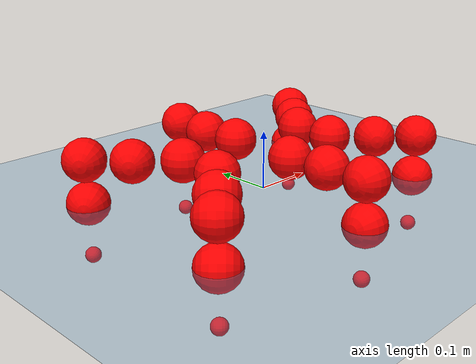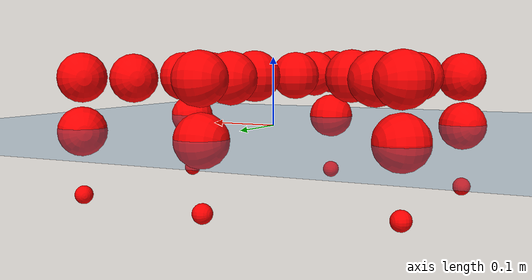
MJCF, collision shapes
<mujoco model="Golem">
  <compiler angle="radian" assetdir="assets" balanceinertia="true" inertiafromgeom="false"/>

  <option timestep="0.005" density="1.2" viscosity="2e-05"/>

  <size nkey="1"/>

  <visual>
    <quality shadowsize="8192"/>
    <map shadowclip="0.5"/>
  </visual>

  <default>
    <default class="/">
      <joint armature="0.01" damping="0.01" frictionloss="0.01"/>
      <geom contype="0" conaffinity="0" group="1" solref="-1000 -80"/>
      <site size="0.01 0.005 0.005" group="5"/>
      <general forcelimited="true" biastype="affine" gainprm="25" biasprm="0 -25 -0.5"/>
      <default class="visual">
        <geom type="mesh" group="2"/>
      </default>
      <default class="collision">
        <geom group="3"/>
      </default>
      <default class="foot">
        <geom size="0.01 0 0" condim="6" group="4" priority="1" solimp="0.015 1 0.01"/>
      </default>
      <default class="reward_collision_sphere">
        <geom group="5" rgba="1 0 0 1"/>
      </default>
    </default>
  </default>

  <asset>
    <texture type="skybox" colorspace="auto" name="//unnamed_texture_0" builtin="gradient" rgb1="0.95 0.95 0.95" rgb2="0.95 0.95 0.95" width="100" height="600"/>
    <texture type="2d" colorspace="auto" name="texplane" builtin="checker" rgb1="0.345 0.575 0.748" rgb2="0.345 0.575 0.748" markrgb="1 1 1" width="512" height="512"/>
    <material name="MatPlane" class="/" texture="texplane" texuniform="true" texrepeat="2 2" specular="0.9"/>
    <mesh name="body" class="/" file="body.stl" scale="0.001 0.001 0.001"/>
    <mesh name="coxa" class="/" file="coxa.stl" scale="0.001 0.001 0.001"/>
    <mesh name="femur" class="/" file="femur.stl" scale="0.001 0.001 0.001"/>
    <mesh name="tibia" class="/" file="tibia.stl" scale="0.001 0.001 0.001"/>
    <mesh name="tarsus" class="/" file="tarsus.stl" scale="0.001 0.001 0.001"/>
  </asset>

  <worldbody>
    <geom name="floor" class="/" size="100 100 0.125" type="plane" group="0" material="MatPlane"/>
    <light name="toplight_shadow" class="/" pos="0 0 5" dir="0.0990148 0.0990148 -0.990148" type="directional" ambient="0.04 0.04 0.04" diffuse="0.55 0.55 0.55" specular="0.12 0.12 0.12"/>
    <light name="toplight_fill" class="/" pos="0 0 5" dir="0.0990148 0.0990148 -0.990148" type="directional" castshadow="false" ambient="0.04 0.04 0.04" diffuse="0.3 0.3 0.3" specular="0.08 0.08 0.08"/>
    <body name="trunk" pos="-0.00278353 0.000515088 -0.000454378" quat="0.999999 -0.000732337 0.000774512 -0.000480959">
      <inertial pos="0.00137509 0.001691 4.70614e-05" quat="0.999935 0.00113451 0.0113535 -0.000466702" mass="2.55095" diaginertia="0.0044673 0.0016364 0.0179051"/>
      <joint name="//unnamed_joint_0" type="free"/>
      <geom name="//unnamed_geom_1" class="/" pos="0 0 0.0724695" quat="1 0 0 0" type="mesh" rgba="0.9 0.9 0.9 1" mesh="body"/>
      <site name="imu" class="/" pos="0.109138 0.0137685 0.10317" size="0.00895409"/>
      <camera name="track" class="/" pos="0 -1.39277 0" quat="0.707107 0.707107 0 0" mode="trackcom"/>
      <camera name="ego_camera" class="/" pos="0.111476 0 0.113234" quat="-0.5 -0.5 0.5 0.5"/>
      <body name="coxa_RR" pos="-0.153692 -0.0551363 0.074024" quat="0.381497 -0.000375565 -0.000183338 -0.92437">
        <inertial pos="0.00256551 0.00163047 0.00199465" quat="0.999958 -0.00660249 -0.00593677 0.00209446" mass="0.15207" diaginertia="0.00480085 0.0017088 0.0191143"/>
        <joint name="coxa_joint_RR" class="/" pos="0 0 0" axis="-0.000858245 0.000697325 -0.999999" range="-3.1454 3.10148" armature="0.00985369" damping="0.0192158" frictionloss="0.00892208"/>
        <geom name="//unnamed_geom_2" class="/" type="mesh" rgba="0.2 0.2 0.2 1" mesh="coxa"/>
        <geom name="//unnamed_geom_3" class="reward_collision_sphere" size="0.0358164" pos="-0.0257252 0 0"/>
        <body name="femur_RR" pos="0.0528404 0.00290133 -0.00203153" quat="0.499153 -0.499401 0.500591 0.500852">
          <inertial pos="0.00259829 0.00136097 -0.000674422" quat="0.999915 -0.00711113 0.010529 -0.00283536" mass="0.144238" diaginertia="0.00468893 0.00165421 0.0186243"/>
          <joint name="femur_joint_RR" class="/" pos="0 0 0" axis="0.00409957 0.00143711 -0.999991" stiffness="0.0112433" range="-3.09199 3.08779" armature="0.00911228" damping="0.0160737" frictionloss="0.0096017"/>
          <geom name="//unnamed_geom_4" class="/" type="mesh" rgba="0.9 0.9 0.9 1" mesh="femur"/>
          <geom name="//unnamed_geom_5" class="reward_collision_sphere" size="0.0358164"/>
          <body name="tibia_RR" pos="0.00153739 -0.0730631 0.00308894" quat="0.000343106 0.999999 0.000503429 -0.00103403">
            <inertial pos="-0.00283323 -0.00124404 -0.000453167" quat="0.99997 -0.0001411 -0.00759736 -0.00112755" mass="0.147858" diaginertia="0.00474657 0.00166558 0.0193947"/>
            <joint name="tibia_joint_RR" class="/" pos="0 0 0" axis="-0.0100506 0.010628 0.999893" stiffness="0.011007" range="-3.16516 3.13268" armature="0.0088311" damping="0" frictionloss="0.00911337"/>
            <geom name="//unnamed_geom_6" class="/" type="mesh" rgba="0.2 0.2 0.2 1" mesh="tibia"/>
            <geom name="//unnamed_geom_7" class="reward_collision_sphere" size="0.0358164"/>
            <body name="tarsus_RR" pos="0.0734838 0.00281243 -0.000276039" quat="0.999999 -0.000401516 -0.000996859 0.000444155">
              <inertial pos="0.0506225 0.00115202 -0.00118728" quat="0.499569 0.498228 0.500322 0.501875" mass="0.147801" diaginertia="0.00482767 0.00170286 0.019101"/>
              <joint name="tarsus_joint_RR" class="/" pos="0 0 0" axis="-0.00236021 0.00346485 0.999991" range="-3.13404 3.14321" armature="0.0085128" damping="0.0358327" frictionloss="0.00770122"/>
              <geom name="//unnamed_geom_8" class="/" type="mesh" rgba="0.9 0.9 0.9 1" mesh="tarsus"/>
              <geom name="foot_1" class="foot" size="0.00923333" pos="0.0960408 0 0" quat="0 -0.707107 0 0.707107"/>
              <geom name="//unnamed_geom_10" class="reward_collision_sphere" size="0.0358164"/>
              <geom name="//unnamed_geom_11" class="reward_collision_sphere" size="0.0134311" pos="0.0921821 0 0"/>
              <site name="foot_1" class="foot" pos="0.0960408 0 0" quat="0 -0.707107 0 0.707107" size="0.00895409"/>
            </body>
          </body>
        </body>
      </body>
      <body name="coxa_RM" pos="-0.0026863 -0.0905796 0.0722961" quat="0.707171 -0.000162478 0.000376809 -0.707042">
        <inertial pos="-0.00255341 -0.000384877 0.000744171" quat="0.999999 -0.000195993 0.00055868 0.00157308" mass="0.147961" diaginertia="0.00467201 0.00173047 0.0192201"/>
        <joint name="coxa_joint_RM" class="/" pos="0 0 0" axis="0.000309247 5.88363e-06 -1" range="-3.08336 3.13412" armature="0.0102579" damping="0.0111882" frictionloss="0.00876016"/>
        <geom name="//unnamed_geom_12" class="/" type="mesh" rgba="0.2 0.2 0.2 1" mesh="coxa"/>
        <geom name="//unnamed_geom_13" class="reward_collision_sphere" size="0.0358164" pos="-0.0257252 0 0"/>
        <body name="femur_RM" pos="0.0483613 0.00181132 0.00141574" quat="0.499202 -0.500185 0.500889 0.499722">
          <inertial pos="-0.000873639 -0.00247782 0.00112208" quat="0.999944 0.00334333 -0.00785221 0.00632112" mass="0.143415" diaginertia="0.00442729 0.0015955 0.0182705"/>
          <joint name="femur_joint_RM" class="/" pos="0 0 0" axis="5.985e-05 0.000247616 -1" range="-3.18003 3.13806" armature="0.00851803" damping="0.0126742" frictionloss="0.00899009"/>
          <geom name="//unnamed_geom_14" class="/" type="mesh" rgba="0.9 0.9 0.9 1" mesh="femur"/>
          <geom name="//unnamed_geom_15" class="reward_collision_sphere" size="0.0358164"/>
          <body name="tibia_RM" pos="-0.00138532 -0.0752193 -0.000199261" quat="-0.000493643 1 0.000760106 -0.00020757">
            <inertial pos="-0.00278225 -0.000475407 9.56429e-05" quat="0.999902 -0.0112936 0.00790642 -0.00250684" mass="0.143504" diaginertia="0.0046945 0.00160462 0.0183877"/>
            <joint name="tibia_joint_RM" class="/" pos="0 0 0" axis="0.00131205 -0.00112554 0.999999" range="-3.13813 3.13176" armature="0.00943814" damping="0" frictionloss="0.00897001"/>
            <geom name="//unnamed_geom_16" class="/" type="mesh" rgba="0.2 0.2 0.2 1" mesh="tibia"/>
            <geom name="//unnamed_geom_17" class="reward_collision_sphere" size="0.0358164"/>
            <body name="tarsus_RM" pos="0.0747615 9.91068e-05 -0.00240069" quat="0.999999 0.00117215 0.000190292 0.000381085">
              <inertial pos="0.0509391 -0.000831212 0.000148396" quat="0.497978 0.503502 0.499445 0.499057" mass="0.141855" diaginertia="0.00470241 0.00161703 0.0194653"/>
              <joint name="tarsus_joint_RM" class="/" pos="0 0 0" axis="0.0141332 -0.000667621 0.9999" range="-3.1946 3.17792" armature="0.00783091" damping="0.00752629" frictionloss="0.00808299"/>
              <geom name="//unnamed_geom_18" class="/" type="mesh" rgba="0.9 0.9 0.9 1" mesh="tarsus"/>
              <geom name="foot_2" class="foot" size="0.00904563" pos="0.0960408 0 0" quat="0 -0.707107 0 0.707107"/>
              <geom name="//unnamed_geom_20" class="reward_collision_sphere" size="0.0358164"/>
              <geom name="//unnamed_geom_21" class="reward_collision_sphere" size="0.0134311" pos="0.0921821 0 0"/>
              <site name="foot_2" class="foot" pos="0.0960408 0 0" quat="0 -0.707107 0 0.707107" size="0.00895409"/>
            </body>
          </body>
        </body>
      </body>
      <body name="coxa_RF" pos="0.150226 -0.0549317 0.072582" quat="0.923872 0.00120507 0.000402518 -0.382699">
        <inertial pos="0.00256501 0.00244312 5.50032e-05" quat="1 5.26817e-05 -1.10517e-05 0.000162122" mass="0.141885" diaginertia="0.00465832 0.00158503 0.0187111"/>
        <joint name="coxa_joint_RF" class="/" pos="0 0 0" axis="0.00865751 -0.00951354 -0.999917" stiffness="0.00101841" range="-3.1008 3.0908" armature="0.00838605" damping="0.0319363" frictionloss="0.00847424"/>
        <geom name="//unnamed_geom_22" class="/" type="mesh" rgba="0.2 0.2 0.2 1" mesh="coxa"/>
        <geom name="//unnamed_geom_23" class="reward_collision_sphere" size="0.0358164" pos="-0.0257252 0 0"/>
        <body name="femur_RF" pos="0.0529366 0.000257404 -0.00183153" quat="0.500688 -0.499613 0.500513 0.499184">
          <inertial pos="0.0006727 -0.00259588 0.00223813" quat="0.999907 -0.00608653 0.00177147 -0.0120767" mass="0.144153" diaginertia="0.00452615 0.00158953 0.0175526"/>
          <joint name="femur_joint_RF" class="/" pos="0 0 0" axis="0.00830872 -0.00541263 -0.999951" range="-3.12108 3.09082" armature="0.00992617" damping="0.00440305" frictionloss="0.0102102"/>
          <geom name="//unnamed_geom_24" class="/" type="mesh" rgba="0.9 0.9 0.9 1" mesh="femur"/>
          <geom name="//unnamed_geom_25" class="reward_collision_sphere" size="0.0358164"/>
          <body name="tibia_RF" pos="-0.00126016 -0.0728705 -0.000743489" quat="0.000692072 1 0.000698281 4.76425e-05">
            <inertial pos="-0.000245113 0.000221553 -0.000612971" quat="0.999902 0.0126754 -0.000956904 -0.00588326" mass="0.139758" diaginertia="0.0044204 0.00158873 0.0183766"/>
            <joint name="tibia_joint_RF" class="/" pos="0 0 0" axis="0.00297234 -0.00158981 0.999994" range="-3.14478 3.1875" armature="0.00851865" damping="0" frictionloss="0.00934462"/>
            <geom name="//unnamed_geom_26" class="/" type="mesh" rgba="0.2 0.2 0.2 1" mesh="tibia"/>
            <geom name="//unnamed_geom_27" class="reward_collision_sphere" size="0.0358164"/>
            <body name="tarsus_RF" pos="0.0743793 -0.000993897 0.000870545" quat="0.999999 0.000849091 0.000525575 6.358e-05">
              <inertial pos="0.0517706 6.05603e-05 -0.000515813" quat="0.496838 0.491303 0.502658 0.509027" mass="0.138431" diaginertia="0.00451612 0.00159758 0.0174278"/>
              <joint name="tarsus_joint_RF" class="/" pos="0 0 0" axis="-0.0030989 -4.65944e-05 0.999995" range="-3.14664 3.15246" armature="0.00884232" damping="0.00729812" frictionloss="0.0100899"/>
              <geom name="//unnamed_geom_28" class="/" type="mesh" rgba="0.9 0.9 0.9 1" mesh="tarsus"/>
              <geom name="foot_3" class="foot" size="0.0097691" pos="0.0960408 0 0" quat="0 -0.707107 0 0.707107"/>
              <geom name="//unnamed_geom_30" class="reward_collision_sphere" size="0.0358164"/>
              <geom name="//unnamed_geom_31" class="reward_collision_sphere" size="0.0134311" pos="0.0921821 0 0"/>
              <site name="foot_3" class="foot" pos="0.0960408 0 0" quat="0 -0.707107 0 0.707107" size="0.00895409"/>
            </body>
          </body>
        </body>
      </body>
      <body name="coxa_LR" pos="-0.154686 0.0592758 0.0755054" quat="0.383489 0.000336224 0.000763119 0.923545">
        <inertial pos="0.000359976 -0.00024461 0.00105125" quat="0.999999 0.000305259 0.000812557 0.00104674" mass="0.140574" diaginertia="0.00448816 0.00161949 0.018186"/>
        <joint name="coxa_joint_LR" class="/" pos="0 0 0" axis="0.00333728 -0.0148351 -0.999884" range="-3.08398 3.14134" armature="0.00811788" damping="0.0179423" frictionloss="0.00917061"/>
        <geom name="//unnamed_geom_32" class="/" type="mesh" rgba="0.2 0.2 0.2 1" mesh="coxa"/>
        <geom name="//unnamed_geom_33" class="reward_collision_sphere" size="0.0358164" pos="-0.0257252 0 0"/>
        <body name="femur_LR" pos="0.0542696 -0.00190691 -0.00169356" quat="0.500411 -0.499687 0.499551 0.500351">
          <inertial pos="6.55159e-05 0.000963033 0.00178502" quat="0.999974 0.00699677 -0.00182931 -0.000496963" mass="0.145584" diaginertia="0.00476347 0.00159319 0.0192276"/>
          <joint name="femur_joint_LR" class="/" pos="0 0 0" axis="0.0025627 0.0037124 0.99999" range="-3.19175 3.19125" armature="0.00908038" damping="0" frictionloss="0.00876936"/>
          <geom name="//unnamed_geom_34" class="/" type="mesh" rgba="0.9 0.9 0.9 1" mesh="femur"/>
          <geom name="//unnamed_geom_35" class="reward_collision_sphere" size="0.0358164"/>
          <body name="tibia_LR" pos="-0.00164729 -0.0757758 -0.00167375" quat="-4.3942e-05 1 -4.27943e-05 1.07697e-05">
            <inertial pos="-0.00200672 -0.000444249 -0.00232712" quat="0.999987 -0.000334604 0.00325994 0.00388426" mass="0.143619" diaginertia="0.00472399 0.00171465 0.0182243"/>
            <joint name="tibia_joint_LR" class="/" pos="0 0 0" axis="0.00103582 -0.00296182 -0.999995" range="-3.09109 3.19483" armature="0.00797056" damping="0.00541109" frictionloss="0.00847833"/>
            <geom name="//unnamed_geom_36" class="/" type="mesh" rgba="0.2 0.2 0.2 1" mesh="tibia"/>
            <geom name="//unnamed_geom_37" class="reward_collision_sphere" size="0.0358164"/>
            <body name="tarsus_LR" pos="0.0738936 -0.000392959 0.000595926" quat="1 -0.000232632 -2.09976e-05 -0.000187541">
              <inertial pos="0.0513662 0.00102877 0.000400065" quat="0.501468 0.499975 0.498418 0.500134" mass="0.144823" diaginertia="0.00464666 0.00174789 0.0192141"/>
              <joint name="tarsus_joint_LR" class="/" pos="0 0 0" axis="-0.0110547 -0.00532949 -0.999925" stiffness="0.00762597" range="-3.12176 3.08489" armature="0.00923936" damping="0.0274947" frictionloss="0.0102088"/>
              <geom name="//unnamed_geom_38" class="/" type="mesh" rgba="0.9 0.9 0.9 1" mesh="tarsus"/>
              <geom name="foot_4" class="foot" size="0.00919511" pos="0.0960408 0 0" quat="0.707107 0 -0.707107 0"/>
              <geom name="//unnamed_geom_40" class="reward_collision_sphere" size="0.0358164"/>
              <geom name="//unnamed_geom_41" class="reward_collision_sphere" size="0.0134311" pos="0.0921821 0 0"/>
              <site name="foot_4" class="foot" pos="0.0960408 0 0" quat="0.707107 0 -0.707107 0" size="0.00895409"/>
            </body>
          </body>
        </body>
      </body>
      <body name="coxa_LM" pos="-0.000444991 0.0885627 0.0744987" quat="0.706964 0.000849385 0.000343802 0.707249">
        <inertial pos="0.0027312 0.00207302 0.00103914" quat="1 -5.52852e-06 0.000435833 -0.000308309" mass="0.143924" diaginertia="0.00467694 0.00164487 0.0187602"/>
        <joint name="coxa_joint_LM" class="/" pos="0 0 0" axis="0.00183584 -0.000577079 -0.999998" range="-3.08844 3.08641" armature="0.0101875" damping="0.00618458" frictionloss="0.0100612"/>
        <geom name="//unnamed_geom_42" class="/" type="mesh" rgba="0.2 0.2 0.2 1" mesh="coxa"/>
        <geom name="//unnamed_geom_43" class="reward_collision_sphere" size="0.0358164" pos="-0.0257252 0 0"/>
        <body name="femur_LM" pos="0.0468916 0.00278532 -0.000900872" quat="0.500201 -0.499313 0.499619 0.500865">
          <inertial pos="-0.00265513 0.00223817 0.000745214" quat="0.999902 0.00852481 0.00725818 -0.00842774" mass="0.14342" diaginertia="0.00480105 0.00158286 0.0185869"/>
          <joint name="femur_joint_LM" class="/" pos="0 0 0" axis="-0.00235146 -0.00291051 0.999993" stiffness="0.01054" range="-3.11203 3.13572" armature="0.0079528" damping="0" frictionloss="0.00859115"/>
          <geom name="//unnamed_geom_44" class="/" type="mesh" rgba="0.9 0.9 0.9 1" mesh="femur"/>
          <geom name="//unnamed_geom_45" class="reward_collision_sphere" size="0.0358164"/>
          <body name="tibia_LM" pos="-0.00152819 -0.0708981 -0.00252345" quat="0.000185993 1 6.12531e-05 -0.000190699">
            <inertial pos="0.000671627 0.00139687 0.00218005" quat="0.99999 0.00151117 -0.000970309 0.00409492" mass="0.140316" diaginertia="0.00445672 0.00163165 0.0183881"/>
            <joint name="tibia_joint_LM" class="/" pos="0 0 0" axis="0.000943461 0.0138043 -0.999904" range="-3.15935 3.19445" armature="0.00917876" damping="0" frictionloss="0.00781448"/>
            <geom name="//unnamed_geom_46" class="/" type="mesh" rgba="0.2 0.2 0.2 1" mesh="tibia"/>
            <geom name="//unnamed_geom_47" class="reward_collision_sphere" size="0.0358164"/>
            <body name="tarsus_LM" pos="0.0775547 -0.0024687 0.000408908" quat="1 -8.21409e-05 -3.19122e-05 0.000104043">
              <inertial pos="0.0520215 9.19559e-05 4.79214e-05" quat="0.504538 0.502089 0.502974 0.49027" mass="0.152123" diaginertia="0.00490586 0.00166938 0.018582"/>
              <joint name="tarsus_joint_LM" class="/" pos="0 0 0" axis="0.00622084 -0.00554851 -0.999965" stiffness="0.0122138" range="-3.14304 3.08436" armature="0.0089841" damping="0.0185499" frictionloss="0.00900088"/>
              <geom name="//unnamed_geom_48" class="/" type="mesh" rgba="0.9 0.9 0.9 1" mesh="tarsus"/>
              <geom name="foot_5" class="foot" size="0.00943183" pos="0.0960408 0 0" quat="0.707107 0 -0.707107 0"/>
              <geom name="//unnamed_geom_50" class="reward_collision_sphere" size="0.0358164"/>
              <geom name="//unnamed_geom_51" class="reward_collision_sphere" size="0.0134311" pos="0.0921821 0 0"/>
              <site name="foot_5" class="foot" pos="0.0960408 0 0" quat="0.707107 0 -0.707107 0" size="0.00895409"/>
            </body>
          </body>
        </body>
      </body>
      <body name="coxa_LF" pos="0.151502 0.0567881 0.0724893" quat="0.923844 -0.000215049 4.22966e-05 0.382768">
        <inertial pos="0.000124543 1.04171e-05 0.000116896" quat="1 -0.000132162 -0.000284204 5.92488e-05" mass="0.140551" diaginertia="0.00453001 0.00165618 0.0187984"/>
        <joint name="coxa_joint_LF" class="/" pos="0 0 0" axis="0.00628731 -0.00633357 -0.99996" range="-3.15958 3.10268" armature="0.00922509" damping="0.0136699" frictionloss="0.00893095"/>
        <geom name="//unnamed_geom_52" class="/" type="mesh" rgba="0.2 0.2 0.2 1" mesh="coxa"/>
        <geom name="//unnamed_geom_53" class="reward_collision_sphere" size="0.0358164" pos="-0.0257252 0 0"/>
        <body name="femur_LF" pos="0.0489101 0.00224783 -0.00213368" quat="0.500201 -0.499911 0.500127 0.49976">
          <inertial pos="-0.00277036 0.0015651 -0.000290734" quat="1 -6.86868e-05 3.39639e-05 -7.40739e-05" mass="0.143437" diaginertia="0.00453736 0.00152859 0.0177354"/>
          <joint name="femur_joint_LF" class="/" pos="0 0 0" axis="0.010436 0.0107485 0.999888" stiffness="0.00715998" range="-3.14296 3.08774" armature="0.00767688" damping="0" frictionloss="0.00874504"/>
          <geom name="//unnamed_geom_54" class="/" type="mesh" rgba="0.9 0.9 0.9 1" mesh="femur"/>
          <geom name="//unnamed_geom_55" class="reward_collision_sphere" size="0.0358164"/>
          <body name="tibia_LF" pos="-0.00186845 -0.0741996 0.00356857" quat="-1.47979e-05 1 -1.60027e-05 -8.31483e-06">
            <inertial pos="0.000663655 0.00224594 -0.000956835" quat="0.99992 0.0110106 -0.00516474 -0.00351588" mass="0.141133" diaginertia="0.00460634 0.00167018 0.0187848"/>
            <joint name="tibia_joint_LF" class="/" pos="0 0 0" axis="0.000252266 -0.00147328 -0.999999" stiffness="0.00267882" range="-3.13325 3.09371" armature="0.00812219" damping="0" frictionloss="0.00909818"/>
            <geom name="//unnamed_geom_56" class="/" type="mesh" rgba="0.2 0.2 0.2 1" mesh="tibia"/>
            <geom name="//unnamed_geom_57" class="reward_collision_sphere" size="0.0358164"/>
            <body name="tarsus_LF" pos="0.0773546 0.00122626 -0.000839961" quat="1 -0.000297205 0.000864268 0.000293054">
              <inertial pos="0.0544195 -0.00240195 -0.000997621" quat="0.500404 0.501 0.498202 0.50039" mass="0.137482" diaginertia="0.00445807 0.00158078 0.0181522"/>
              <joint name="tarsus_joint_LF" class="/" pos="0 0 0" axis="0.00633667 -0.011553 -0.999913" range="-3.0854 3.11736" armature="0.00862336" damping="0.0209238" frictionloss="0.00884701"/>
              <geom name="//unnamed_geom_58" class="/" type="mesh" rgba="0.9 0.9 0.9 1" mesh="tarsus"/>
              <geom name="foot_6" class="foot" size="0.00793895" pos="0.0960408 0 0" quat="0.707107 0 -0.707107 0"/>
              <geom name="//unnamed_geom_60" class="reward_collision_sphere" size="0.0358164"/>
              <geom name="//unnamed_geom_61" class="reward_collision_sphere" size="0.0134311" pos="0.0921821 0 0"/>
              <site name="foot_6" class="foot" pos="0.0960408 0 0" quat="0.707107 0 -0.707107 0" size="0.00895409"/>
            </body>
          </body>
        </body>
      </body>
    </body>
  </worldbody>

  <contact>
    <pair class="/" geom1="floor" geom2="foot_1" name="//unnamed_contact_0"/>
    <pair class="/" geom1="floor" geom2="foot_2" name="//unnamed_contact_1"/>
    <pair class="/" geom1="floor" geom2="foot_3" name="//unnamed_contact_2"/>
    <pair class="/" geom1="floor" geom2="foot_4" name="//unnamed_contact_3"/>
    <pair class="/" geom1="floor" geom2="foot_5" name="//unnamed_contact_4"/>
    <pair class="/" geom1="floor" geom2="foot_6" name="//unnamed_contact_5"/>
  </contact>

  <actuator>
    <general name="coxa_joint_RR" class="/" joint="coxa_joint_RR" forcerange="-6.29322 6.29322" gainprm="22.4504" biasprm="0 -22.4504 -0.433465"/>
    <general name="femur_joint_RR" class="/" joint="femur_joint_RR" forcerange="-6.56417 6.56417" gainprm="22.4504" biasprm="0 -22.4504 -0.433465"/>
    <general name="tibia_joint_RR" class="/" joint="tibia_joint_RR" forcerange="-6.47624 6.47624" gainprm="22.4504" biasprm="0 -22.4504 -0.433465"/>
    <general name="tarsus_joint_RR" class="/" joint="tarsus_joint_RR" forcerange="-6.51303 6.51303" gainprm="22.4504" biasprm="0 -22.4504 -0.433465"/>
    <general name="coxa_joint_RM" class="/" joint="coxa_joint_RM" forcerange="-6.42822 6.42822" gainprm="22.4504" biasprm="0 -22.4504 -0.433465"/>
    <general name="femur_joint_RM" class="/" joint="femur_joint_RM" forcerange="-5.8499 5.8499" gainprm="22.4504" biasprm="0 -22.4504 -0.433465"/>
    <general name="tibia_joint_RM" class="/" joint="tibia_joint_RM" forcerange="-6.58392 6.58392" gainprm="22.4504" biasprm="0 -22.4504 -0.433465"/>
    <general name="tarsus_joint_RM" class="/" joint="tarsus_joint_RM" forcerange="-6.76884 6.76884" gainprm="22.4504" biasprm="0 -22.4504 -0.433465"/>
    <general name="coxa_joint_RF" class="/" joint="coxa_joint_RF" forcerange="-5.85646 5.85646" gainprm="22.4504" biasprm="0 -22.4504 -0.433465"/>
    <general name="femur_joint_RF" class="/" joint="femur_joint_RF" forcerange="-5.8524 5.8524" gainprm="22.4504" biasprm="0 -22.4504 -0.433465"/>
    <general name="tibia_joint_RF" class="/" joint="tibia_joint_RF" forcerange="-7.21407 7.21407" gainprm="22.4504" biasprm="0 -22.4504 -0.433465"/>
    <general name="tarsus_joint_RF" class="/" joint="tarsus_joint_RF" forcerange="-6.93426 6.93426" gainprm="22.4504" biasprm="0 -22.4504 -0.433465"/>
    <general name="coxa_joint_LR" class="/" joint="coxa_joint_LR" forcerange="-6.79653 6.79653" gainprm="22.4504" biasprm="0 -22.4504 -0.433465"/>
    <general name="femur_joint_LR" class="/" joint="femur_joint_LR" forcerange="-5.99178 5.99178" gainprm="22.4504" biasprm="0 -22.4504 -0.433465"/>
    <general name="tibia_joint_LR" class="/" joint="tibia_joint_LR" forcerange="-5.94937 5.94937" gainprm="22.4504" biasprm="0 -22.4504 -0.433465"/>
    <general name="tarsus_joint_LR" class="/" joint="tarsus_joint_LR" forcerange="-7.06376 7.06376" gainprm="22.4504" biasprm="0 -22.4504 -0.433465"/>
    <general name="coxa_joint_LM" class="/" joint="coxa_joint_LM" forcerange="-7.04488 7.04488" gainprm="22.4504" biasprm="0 -22.4504 -0.433465"/>
    <general name="femur_joint_LM" class="/" joint="femur_joint_LM" forcerange="-6.64216 6.64216" gainprm="22.4504" biasprm="0 -22.4504 -0.433465"/>
    <general name="tibia_joint_LM" class="/" joint="tibia_joint_LM" forcerange="-6.61684 6.61684" gainprm="22.4504" biasprm="0 -22.4504 -0.433465"/>
    <general name="tarsus_joint_LM" class="/" joint="tarsus_joint_LM" forcerange="-6.19784 6.19784" gainprm="22.4504" biasprm="0 -22.4504 -0.433465"/>
    <general name="coxa_joint_LF" class="/" joint="coxa_joint_LF" forcerange="-6.60176 6.60176" gainprm="22.4504" biasprm="0 -22.4504 -0.433465"/>
    <general name="femur_joint_LF" class="/" joint="femur_joint_LF" forcerange="-6.54062 6.54062" gainprm="22.4504" biasprm="0 -22.4504 -0.433465"/>
    <general name="tibia_joint_LF" class="/" joint="tibia_joint_LF" forcerange="-6.76146 6.76146" gainprm="22.4504" biasprm="0 -22.4504 -0.433465"/>
    <general name="tarsus_joint_LF" class="/" joint="tarsus_joint_LF" forcerange="-6.7793 6.7793" gainprm="22.4504" biasprm="0 -22.4504 -0.433465"/>
  </actuator>

  <sensor>
    <gyro site="imu" name="imu_angular_velocity"/>
    <velocimeter site="imu" name="imu_linear_velocity"/>
    <framelinvel objtype="site" objname="foot_1" name="foot_1_global_linear_velocity"/>
    <framelinvel objtype="site" objname="foot_2" name="foot_2_global_linear_velocity"/>
    <framelinvel objtype="site" objname="foot_3" name="foot_3_global_linear_velocity"/>
    <framelinvel objtype="site" objname="foot_4" name="foot_4_global_linear_velocity"/>
    <framelinvel objtype="site" objname="foot_5" name="foot_5_global_linear_velocity"/>
    <framelinvel objtype="site" objname="foot_6" name="foot_6_global_linear_velocity"/>
  </sensor>

  <keyframe>
    <key name="home" qpos="0 0 0.1457 1 0 0 0 0 0 0 0 0 0 0 0 0 0 0 0 0 0 0 0 0 0 0 0 0 0 0 0"/>
  </keyframe>
</mujoco>
